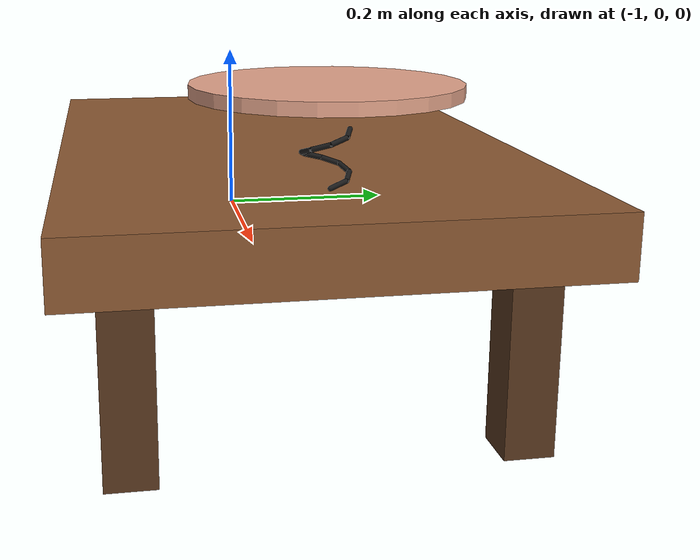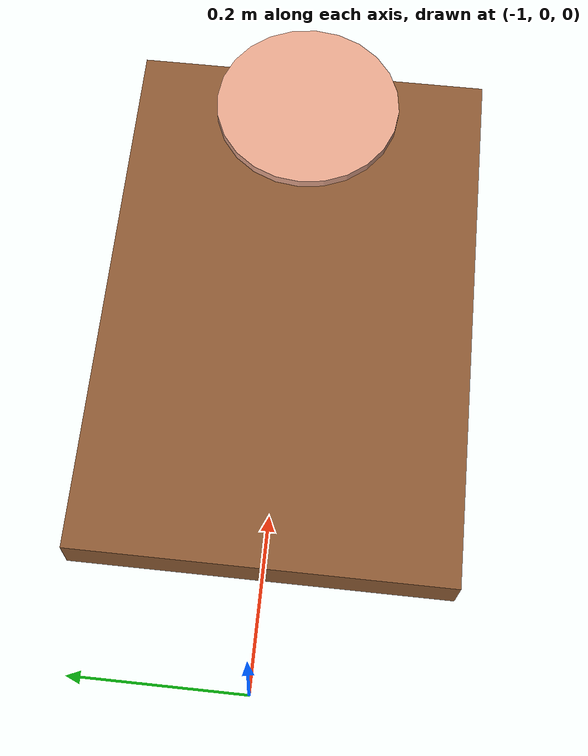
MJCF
<mujoco model="table">
  <worldbody>
    <!-- Kinematic parent for the complete scenario fixture. Moving this mocap
         body keeps the table, visual spring, and compliant pad together while
         preserving the pad's local spring joint. -->
    <body name="table_assembly" mocap="true" pos="0 0 0">
      <!-- Panda base +X is world -X (base yaw = pi). Translate the table
           0.10 m forward; keep the mocap origin at zero for height actions. -->
      <body name="table" pos="-0.60 0 0.13">
      <!-- table top -->
      <geom
        name="table_top"
        type="box"
        size="0.30 0.20 0.025"
        rgba="0.55 0.35 0.20 1"
        contype="1"
        conaffinity="1"
        friction="1.0 0.005 0.0001"/>

      <!-- table legs -->
      <geom
        name="table_leg_fl"
        type="box"
        pos="0.23 0.15 -0.09"
        size="0.02 0.02 0.09"
        rgba="0.35 0.22 0.12 1"/>

      <geom
        name="table_leg_fr"
        type="box"
        pos="0.23 -0.15 -0.09"
        size="0.02 0.02 0.09"
        rgba="0.35 0.22 0.12 1"/>

      <geom
        name="table_leg_rl"
        type="box"
        pos="-0.23 0.15 -0.09"
        size="0.02 0.02 0.09"
        rgba="0.35 0.22 0.12 1"/>

      <geom
        name="table_leg_rr"
        type="box"
        pos="-0.23 -0.15 -0.09"
        size="0.02 0.02 0.09"
        rgba="0.35 0.22 0.12 1"/>
      </body>

      <!-- visual helical spring, display only, no collision -->
      <!-- Center the spring/pad under the TCP at base x=0.40 m. -->
      <body name="hand_surface_spring_visual" pos="-0.40 0 0.160">
      <geom
        name="spring_seg_01"
        type="capsule"
        fromto="0.018 0.000 0.000  0.013 0.013 0.004"
        size="0.002"
        rgba="0.1 0.1 0.1 1"
        contype="0"
        conaffinity="0"/>

      <geom
        name="spring_seg_02"
        type="capsule"
        fromto="0.013 0.013 0.004  0.000 0.018 0.008"
        size="0.002"
        rgba="0.1 0.1 0.1 1"
        contype="0"
        conaffinity="0"/>

      <geom
        name="spring_seg_03"
        type="capsule"
        fromto="0.000 0.018 0.008  -0.013 0.013 0.012"
        size="0.002"
        rgba="0.1 0.1 0.1 1"
        contype="0"
        conaffinity="0"/>

      <geom
        name="spring_seg_04"
        type="capsule"
        fromto="-0.013 0.013 0.012  -0.018 0.000 0.016"
        size="0.002"
        rgba="0.1 0.1 0.1 1"
        contype="0"
        conaffinity="0"/>

      <geom
        name="spring_seg_05"
        type="capsule"
        fromto="-0.018 0.000 0.016  -0.013 -0.013 0.020"
        size="0.002"
        rgba="0.1 0.1 0.1 1"
        contype="0"
        conaffinity="0"/>

      <geom
        name="spring_seg_06"
        type="capsule"
        fromto="-0.013 -0.013 0.020  0.000 -0.018 0.024"
        size="0.002"
        rgba="0.1 0.1 0.1 1"
        contype="0"
        conaffinity="0"/>

      <geom
        name="spring_seg_07"
        type="capsule"
        fromto="0.000 -0.018 0.024  0.013 -0.013 0.028"
        size="0.002"
        rgba="0.1 0.1 0.1 1"
        contype="0"
        conaffinity="0"/>

      <geom
        name="spring_seg_08"
        type="capsule"
        fromto="0.013 -0.013 0.028  0.018 0.000 0.032"
        size="0.002"
        rgba="0.1 0.1 0.1 1"
        contype="0"
        conaffinity="0"/>

      <geom
        name="spring_seg_09"
        type="capsule"
        fromto="0.018 0.000 0.032  0.013 0.013 0.036"
        size="0.002"
        rgba="0.1 0.1 0.1 1"
        contype="0"
        conaffinity="0"/>

      <geom
        name="spring_seg_10"
        type="capsule"
        fromto="0.013 0.013 0.036  0.000 0.018 0.040"
        size="0.002"
        rgba="0.1 0.1 0.1 1"
        contype="0"
        conaffinity="0"/>
      </body>

      <!-- spring-supported compliant pad simulating human hand surface -->
      <!-- table top upper surface: z = 0.13 + 0.025 = 0.155 m -->
      <body name="human_hand_surface" pos="-0.40 0 0.23">
      <joint
        name="hand_surface_spring_z"
        type="slide"
        axis="0 0 1"
        limited="true"
        range="-0.02 0.002"
        stiffness="200000"
        damping="200"
        solreflimit="0.001 1"
        solimplimit="0.995 0.999 0.0001"
        springref="0"/>

      <geom
        name="hand_surface_pad"
        type="cylinder"
        size="0.10 0.005"
        rgba="0.9 0.65 0.55 1"
        mass="0.02"
        contype="1"
        conaffinity="1"
        condim="6"
        priority="1"
        friction="2.0 0.05 0.001"
        solref="0.001 1"
        solimp="0.995 0.999 0.0001"/>
      </body>
    </body>
  </worldbody>
</mujoco>
